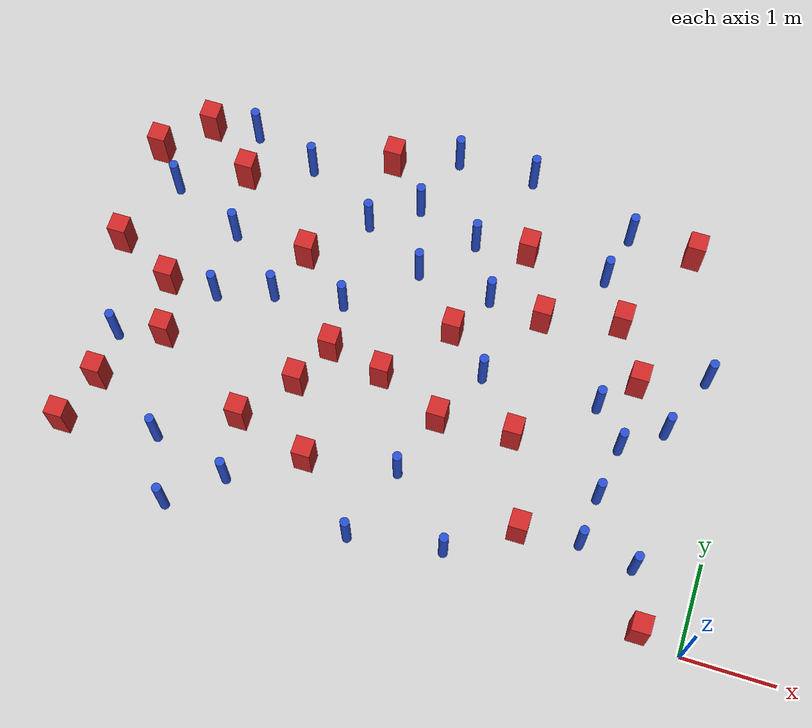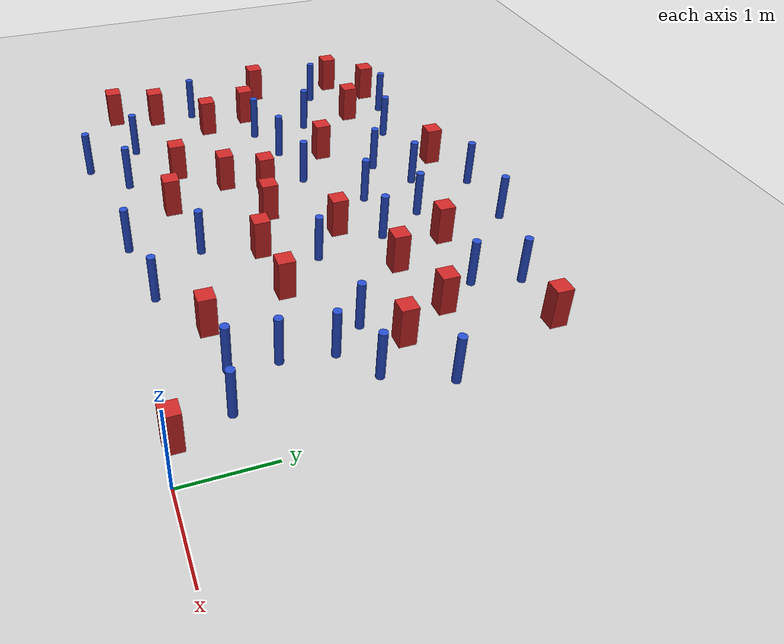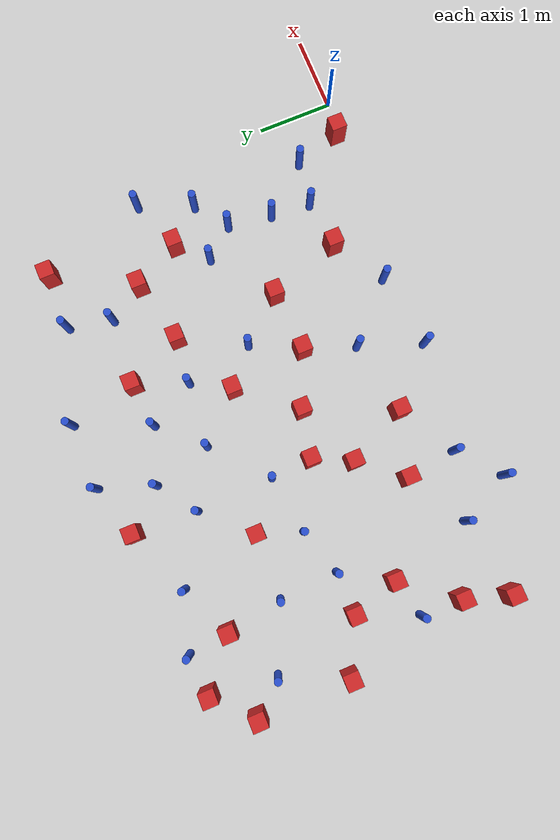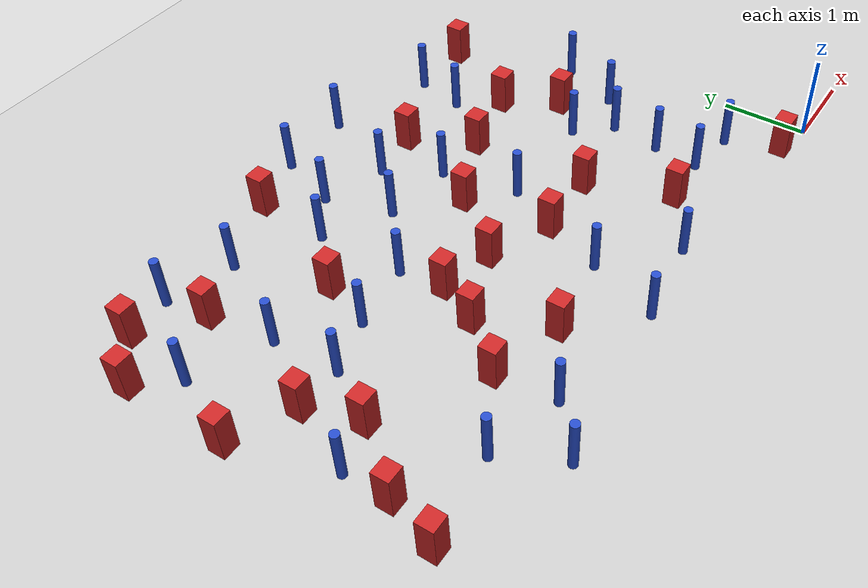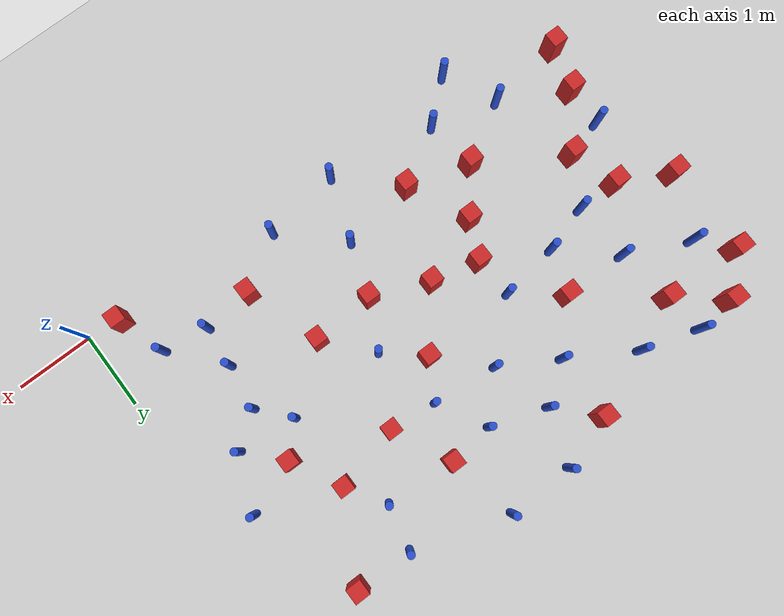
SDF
<sdf version="1.6">
 <world name="default">
  <model name="ground_plane">
   <static>1</static>
   <link name="link">
    <collision name="collision">
     <geometry><plane><normal>0 0 1</normal><size>100 100</size></plane></geometry>
     <surface><friction><ode><mu>100</mu><mu2>50</mu2></ode></friction></surface>
    </collision>
    <visual name="visual">
     <cast_shadows>0</cast_shadows>
     <geometry><plane><normal>0 0 1</normal><size>100 100</size></plane></geometry>
     <material>
      <ambient>1.0 1.0 1.0 1.0</ambient>
      <diffuse>0.8 0.8 0.8 1.0</diffuse>
      <specular>0.01 0.01 0.01 1.000000</specular>
     </material>
    </visual>
   </link>
  </model>
  <model name="square_post_obstacle16">
   <static>true</static>
   <pose>-6.51845038567 4.35904660605 8.22691968438e-08 7.2212513382e-06 -7.54495500217e-07 2.29674213826e-05</pose>
   <link name="link">
    <pose>0 0 0.25 0 -0 0</pose>
    <inertial>
     <mass>100</mass>
     <inertia>
      <ixx>0.166667</ixx>
      <ixy>0</ixy>
      <ixz>0</ixz>
      <iyy>0.166667</iyy>
      <iyz>0</iyz>
      <izz>0.166667</izz>
     </inertia>
    </inertial>
    <collision name="collision"><geometry><box><size>.2 .2 .5</size></box></geometry></collision>
    <visual name="visual">
     <geometry><box><size>.2 .2 .5</size></box></geometry>
     <material>
      <script><name>Gazebo/Red</name><uri>file://media/materials/scripts/gazebo.material</uri></script>
     </material>
    </visual>
   </link>
  </model>
  <model name="square_post_obstacle20">
   <static>true</static>
   <pose>-6.657368804 1.1010523176 8.22691968438e-08 7.2212513382e-06 -7.54495500217e-07 2.29674213826e-05</pose>
   <link name="link">
    <pose>0 0 0.25 0 -0 0</pose>
    <inertial>
     <mass>100</mass>
     <inertia>
      <ixx>0.166667</ixx>
      <ixy>0</ixy>
      <ixz>0</ixz>
      <iyy>0.166667</iyy>
      <iyz>0</iyz>
      <izz>0.166667</izz>
     </inertia>
    </inertial>
    <collision name="collision"><geometry><box><size>.2 .2 .5</size></box></geometry></collision>
    <visual name="visual">
     <geometry><box><size>.2 .2 .5</size></box></geometry>
     <material>
      <script><name>Gazebo/Red</name><uri>file://media/materials/scripts/gazebo.material</uri></script>
     </material>
    </visual>
   </link>
  </model>
  <model name="square_post_obstacle22">
   <static>true</static>
   <pose>-2.2351654924 1.73350953007 8.22691968438e-08 7.2212513382e-06 -7.54495500217e-07 2.29674213826e-05</pose>
   <link name="link">
    <pose>0 0 0.25 0 -0 0</pose>
    <inertial>
     <mass>100</mass>
     <inertia>
      <ixx>0.166667</ixx>
      <ixy>0</ixy>
      <ixz>0</ixz>
      <iyy>0.166667</iyy>
      <iyz>0</iyz>
      <izz>0.166667</izz>
     </inertia>
    </inertial>
    <collision name="collision"><geometry><box><size>.2 .2 .5</size></box></geometry></collision>
    <visual name="visual">
     <geometry><box><size>.2 .2 .5</size></box></geometry>
     <material>
      <script><name>Gazebo/Red</name><uri>file://media/materials/scripts/gazebo.material</uri></script>
     </material>
    </visual>
   </link>
  </model>
  <model name="pole_obstacle14">
   <static>true</static>
   <pose>-4.9809463206 0.424890662232 2.88873142074e-08 -9.90536689981e-09 4.60219948986e-07 -1.20965994962e-07</pose>
   <link name="link">
    <pose>0 0 0.3 0 -0 0</pose>
    <inertial>
     <mass>1</mass>
     <inertia><ixx>0.145833</ixx><ixy>0</ixy><ixz>0</ixz><iyy>0.145833</iyy><iyz>0</iyz><izz>0.125</izz></inertia>
    </inertial>
    <collision name="collision">
     <geometry><cylinder><radius>0.05</radius><length>.6</length></cylinder></geometry>
    </collision>
    <visual name="visual">
     <geometry><cylinder><radius>0.05</radius><length>.6</length></cylinder></geometry>
     <material>
      <script><name>Gazebo/Blue</name><uri>file://media/materials/scripts/gazebo.material</uri></script>
     </material>
    </visual>
   </link>
  </model>
  <model name="pole_obstacle16">
   <static>true</static>
   <pose>-3.73426114048 3.28254340727 2.88873142074e-08 -9.90536689597e-09 4.60219948995e-07 -1.20965994957e-07</pose>
   <link name="link">
    <pose>0 0 0.3 0 -0 0</pose>
    <inertial>
     <mass>1</mass>
     <inertia><ixx>0.145833</ixx><ixy>0</ixy><ixz>0</ixz><iyy>0.145833</iyy><iyz>0</iyz><izz>0.125</izz></inertia>
    </inertial>
    <collision name="collision">
     <geometry><cylinder><radius>0.05</radius><length>.6</length></cylinder></geometry>
    </collision>
    <visual name="visual">
     <geometry><cylinder><radius>0.05</radius><length>.6</length></cylinder></geometry>
     <material>
      <script><name>Gazebo/Blue</name><uri>file://media/materials/scripts/gazebo.material</uri></script>
     </material>
    </visual>
   </link>
  </model>
  <model name="square_post_obstacle28">
   <static>true</static>
   <pose>-1.11520462071 2.69341636059 8.22691968438e-08 7.2212513382e-06 -7.54495500217e-07 2.29674213826e-05</pose>
   <link name="link">
    <pose>0 0 0.25 0 -0 0</pose>
    <inertial>
     <mass>100</mass>
     <inertia>
      <ixx>0.166667</ixx>
      <ixy>0</ixy>
      <ixz>0</ixz>
      <iyy>0.166667</iyy>
      <iyz>0</iyz>
      <izz>0.166667</izz>
     </inertia>
    </inertial>
    <collision name="collision"><geometry><box><size>.2 .2 .5</size></box></geometry></collision>
    <visual name="visual">
     <geometry><box><size>.2 .2 .5</size></box></geometry>
     <material>
      <script><name>Gazebo/Red</name><uri>file://media/materials/scripts/gazebo.material</uri></script>
     </material>
    </visual>
   </link>
  </model>
  <model name="pole_obstacle25">
   <static>true</static>
   <pose>-5.17843306184 2.56643827365 2.88873142074e-08 -9.90536690245e-09 4.6021994898e-07 -1.20965994966e-07</pose>
   <link name="link">
    <pose>0 0 0.3 0 -0 0</pose>
    <inertial>
     <mass>1</mass>
     <inertia><ixx>0.145833</ixx><ixy>0</ixy><ixz>0</ixz><iyy>0.145833</iyy><iyz>0</iyz><izz>0.125</izz></inertia>
    </inertial>
    <collision name="collision">
     <geometry><cylinder><radius>0.05</radius><length>.6</length></cylinder></geometry>
    </collision>
    <visual name="visual">
     <geometry><cylinder><radius>0.05</radius><length>.6</length></cylinder></geometry>
     <material>
      <script><name>Gazebo/Blue</name><uri>file://media/materials/scripts/gazebo.material</uri></script>
     </material>
    </visual>
   </link>
  </model>
  <model name="square_post_obstacle32">
   <static>true</static>
   <pose>-3.04330899358 1.68615614559 8.22691968438e-08 7.2212513382e-06 -7.54495500217e-07 2.29674213826e-05</pose>
   <link name="link">
    <pose>0 0 0.25 0 -0 0</pose>
    <inertial>
     <mass>100</mass>
     <inertia>
      <ixx>0.166667</ixx>
      <ixy>0</ixy>
      <ixz>0</ixz>
      <iyy>0.166667</iyy>
      <iyz>0</iyz>
      <izz>0.166667</izz>
     </inertia>
    </inertial>
    <collision name="collision"><geometry><box><size>.2 .2 .5</size></box></geometry></collision>
    <visual name="visual">
     <geometry><box><size>.2 .2 .5</size></box></geometry>
     <material>
      <script><name>Gazebo/Red</name><uri>file://media/materials/scripts/gazebo.material</uri></script>
     </material>
    </visual>
   </link>
  </model>
  <model name="pole_obstacle33">
   <static>true</static>
   <pose>-6.63795299948 3.52090279439 2.88873142074e-08 -9.90536690245e-09 4.6021994898e-07 -1.20965994966e-07</pose>
   <link name="link">
    <pose>0 0 0.3 0 -0 0</pose>
    <inertial>
     <mass>1</mass>
     <inertia><ixx>0.145833</ixx><ixy>0</ixy><ixz>0</ixz><iyy>0.145833</iyy><iyz>0</iyz><izz>0.125</izz></inertia>
    </inertial>
    <collision name="collision">
     <geometry><cylinder><radius>0.05</radius><length>.6</length></cylinder></geometry>
    </collision>
    <visual name="visual">
     <geometry><cylinder><radius>0.05</radius><length>.6</length></cylinder></geometry>
     <material>
      <script><name>Gazebo/Blue</name><uri>file://media/materials/scripts/gazebo.material</uri></script>
     </material>
    </visual>
   </link>
  </model>
  <model name="pole_obstacle43">
   <static>true</static>
   <pose>-3.57193464272 0.193258581739 2.88873142074e-08 -9.90536691049e-09 4.6021994896e-07 -1.20965994981e-07</pose>
   <link name="link">
    <pose>0 0 0.3 0 -0 0</pose>
    <inertial>
     <mass>1</mass>
     <inertia><ixx>0.145833</ixx><ixy>0</ixy><ixz>0</ixz><iyy>0.145833</iyy><iyz>0</iyz><izz>0.125</izz></inertia>
    </inertial>
    <collision name="collision">
     <geometry><cylinder><radius>0.05</radius><length>.6</length></cylinder></geometry>
    </collision>
    <visual name="visual">
     <geometry><cylinder><radius>0.05</radius><length>.6</length></cylinder></geometry>
     <material>
      <script><name>Gazebo/Blue</name><uri>file://media/materials/scripts/gazebo.material</uri></script>
     </material>
    </visual>
   </link>
  </model>
  <model name="pole_obstacle46">
   <static>true</static>
   <pose>-2.72502126284 2.30373157046 2.88873142074e-08 -9.90536690232e-09 4.6021994898e-07 -1.20965994968e-07</pose>
   <link name="link">
    <pose>0 0 0.3 0 -0 0</pose>
    <inertial>
     <mass>1</mass>
     <inertia><ixx>0.145833</ixx><ixy>0</ixy><ixz>0</ixz><iyy>0.145833</iyy><iyz>0</iyz><izz>0.125</izz></inertia>
    </inertial>
    <collision name="collision">
     <geometry><cylinder><radius>0.05</radius><length>.6</length></cylinder></geometry>
    </collision>
    <visual name="visual">
     <geometry><cylinder><radius>0.05</radius><length>.6</length></cylinder></geometry>
     <material>
      <script><name>Gazebo/Blue</name><uri>file://media/materials/scripts/gazebo.material</uri></script>
     </material>
    </visual>
   </link>
  </model>
  <model name="square_post_obstacle49">
   <static>true</static>
   <pose>-4.3804105331 2.13415038699 8.22691968438e-08 7.2212513382e-06 -7.54495500217e-07 2.29674213826e-05</pose>
   <link name="link">
    <pose>0 0 0.25 0 -0 0</pose>
    <inertial>
     <mass>100</mass>
     <inertia>
      <ixx>0.166667</ixx>
      <ixy>0</ixy>
      <ixz>0</ixz>
      <iyy>0.166667</iyy>
      <iyz>0</iyz>
      <izz>0.166667</izz>
     </inertia>
    </inertial>
    <collision name="collision"><geometry><box><size>.2 .2 .5</size></box></geometry></collision>
    <visual name="visual">
     <geometry><box><size>.2 .2 .5</size></box></geometry>
     <material>
      <script><name>Gazebo/Red</name><uri>file://media/materials/scripts/gazebo.material</uri></script>
     </material>
    </visual>
   </link>
  </model>
  <model name="pole_obstacle51">
   <static>true</static>
   <pose>-3.69970686988 4.75485881099 2.88873142074e-08 -9.90536689859e-09 4.60219948989e-07 -1.20965994961e-07</pose>
   <link name="link">
    <pose>0 0 0.3 0 -0 0</pose>
    <inertial>
     <mass>1</mass>
     <inertia><ixx>0.145833</ixx><ixy>0</ixy><ixz>0</ixz><iyy>0.145833</iyy><iyz>0</iyz><izz>0.125</izz></inertia>
    </inertial>
    <collision name="collision">
     <geometry><cylinder><radius>0.05</radius><length>.6</length></cylinder></geometry>
    </collision>
    <visual name="visual">
     <geometry><cylinder><radius>0.05</radius><length>.6</length></cylinder></geometry>
     <material>
      <script><name>Gazebo/Blue</name><uri>file://media/materials/scripts/gazebo.material</uri></script>
     </material>
    </visual>
   </link>
  </model>
  <model name="pole_obstacle60">
   <static>true</static>
   <pose>-1.45948659381 2.32723784329 2.88873142074e-08 -9.90536689791e-09 4.6021994899e-07 -1.20965994959e-07</pose>
   <link name="link">
    <pose>0 0 0.3 0 -0 0</pose>
    <inertial>
     <mass>1</mass>
     <inertia><ixx>0.145833</ixx><ixy>0</ixy><ixz>0</ixz><iyy>0.145833</iyy><iyz>0</iyz><izz>0.125</izz></inertia>
    </inertial>
    <collision name="collision">
     <geometry><cylinder><radius>0.05</radius><length>.6</length></cylinder></geometry>
    </collision>
    <visual name="visual">
     <geometry><cylinder><radius>0.05</radius><length>.6</length></cylinder></geometry>
     <material>
      <script><name>Gazebo/Blue</name><uri>file://media/materials/scripts/gazebo.material</uri></script>
     </material>
    </visual>
   </link>
  </model>
  <model name="square_post_obstacle75">
   <static>true</static>
   <pose>-2.64704335204 3.85869152748 8.22691968438e-08 7.2212513382e-06 -7.54495500217e-07 2.29674213826e-05</pose>
   <link name="link">
    <pose>0 0 0.25 0 -0 0</pose>
    <inertial>
     <mass>100</mass>
     <inertia>
      <ixx>0.166667</ixx>
      <ixy>0</ixy>
      <ixz>0</ixz>
      <iyy>0.166667</iyy>
      <iyz>0</iyz>
      <izz>0.166667</izz>
     </inertia>
    </inertial>
    <collision name="collision"><geometry><box><size>.2 .2 .5</size></box></geometry></collision>
    <visual name="visual">
     <geometry><box><size>.2 .2 .5</size></box></geometry>
     <material>
      <script><name>Gazebo/Red</name><uri>file://media/materials/scripts/gazebo.material</uri></script>
     </material>
    </visual>
   </link>
  </model>
  <model name="pole_obstacle83">
   <static>true</static>
   <pose>-0.668811222957 0.72222553618 2.88873142074e-08 -9.90536689967e-09 4.60219948986e-07 -1.20965994963e-07</pose>
   <link name="link">
    <pose>0 0 0.3 0 -0 0</pose>
    <inertial>
     <mass>1</mass>
     <inertia><ixx>0.145833</ixx><ixy>0</ixy><ixz>0</ixz><iyy>0.145833</iyy><iyz>0</iyz><izz>0.125</izz></inertia>
    </inertial>
    <collision name="collision">
     <geometry><cylinder><radius>0.05</radius><length>.6</length></cylinder></geometry>
    </collision>
    <visual name="visual">
     <geometry><cylinder><radius>0.05</radius><length>.6</length></cylinder></geometry>
     <material>
      <script><name>Gazebo/Blue</name><uri>file://media/materials/scripts/gazebo.material</uri></script>
     </material>
    </visual>
   </link>
  </model>
  <model name="pole_obstacle88">
   <static>true</static>
   <pose>-5.82400107984 3.14720429837 2.88873142074e-08 -9.90536690245e-09 4.6021994898e-07 -1.20965994966e-07</pose>
   <link name="link">
    <pose>0 0 0.3 0 -0 0</pose>
    <inertial>
     <mass>1</mass>
     <inertia><ixx>0.145833</ixx><ixy>0</ixy><ixz>0</ixz><iyy>0.145833</iyy><iyz>0</iyz><izz>0.125</izz></inertia>
    </inertial>
    <collision name="collision">
     <geometry><cylinder><radius>0.05</radius><length>.6</length></cylinder></geometry>
    </collision>
    <visual name="visual">
     <geometry><cylinder><radius>0.05</radius><length>.6</length></cylinder></geometry>
     <material>
      <script><name>Gazebo/Blue</name><uri>file://media/materials/scripts/gazebo.material</uri></script>
     </material>
    </visual>
   </link>
  </model>
  <model name="square_post_obstacle82">
   <static>true</static>
   <pose>-3.76192821266 1.9963932347 8.22691968438e-08 7.2212513382e-06 -7.54495500217e-07 2.29674213826e-05</pose>
   <link name="link">
    <pose>0 0 0.25 0 -0 0</pose>
    <inertial>
     <mass>100</mass>
     <inertia>
      <ixx>0.166667</ixx>
      <ixy>0</ixy>
      <ixz>0</ixz>
      <iyy>0.166667</iyy>
      <iyz>0</iyz>
      <izz>0.166667</izz>
     </inertia>
    </inertial>
    <collision name="collision"><geometry><box><size>.2 .2 .5</size></box></geometry></collision>
    <visual name="visual">
     <geometry><box><size>.2 .2 .5</size></box></geometry>
     <material>
      <script><name>Gazebo/Red</name><uri>file://media/materials/scripts/gazebo.material</uri></script>
     </material>
    </visual>
   </link>
  </model>
  <model name="pole_obstacle100">
   <static>true</static>
   <pose>-2.83205600875 4.7627982181 2.88873142074e-08 -9.90536689859e-09 4.60219948989e-07 -1.20965994961e-07</pose>
   <link name="link">
    <pose>0 0 0.3 0 -0 0</pose>
    <inertial>
     <mass>1</mass>
     <inertia><ixx>0.145833</ixx><ixy>0</ixy><ixz>0</ixz><iyy>0.145833</iyy><iyz>0</iyz><izz>0.125</izz></inertia>
    </inertial>
    <collision name="collision">
     <geometry><cylinder><radius>0.05</radius><length>.6</length></cylinder></geometry>
    </collision>
    <visual name="visual">
     <geometry><cylinder><radius>0.05</radius><length>.6</length></cylinder></geometry>
     <material>
      <script><name>Gazebo/Blue</name><uri>file://media/materials/scripts/gazebo.material</uri></script>
     </material>
    </visual>
   </link>
  </model>
  <model name="square_post_obstacle90">
   <static>true</static>
   <pose>-5.06038555081 1.10114767055 8.22691968438e-08 7.2212513382e-06 -7.54495500217e-07 2.29674213826e-05</pose>
   <link name="link">
    <pose>0 0 0.25 0 -0 0</pose>
    <inertial>
     <mass>100</mass>
     <inertia>
      <ixx>0.166667</ixx>
      <ixy>0</ixy>
      <ixz>0</ixz>
      <iyy>0.166667</iyy>
      <iyz>0</iyz>
      <izz>0.166667</izz>
     </inertia>
    </inertial>
    <collision name="collision"><geometry><box><size>.2 .2 .5</size></box></geometry></collision>
    <visual name="visual">
     <geometry><box><size>.2 .2 .5</size></box></geometry>
     <material>
      <script><name>Gazebo/Red</name><uri>file://media/materials/scripts/gazebo.material</uri></script>
     </material>
    </visual>
   </link>
  </model>
  <model name="square_post_obstacle92">
   <static>true</static>
   <pose>-6.1452950859 1.76840666454 8.22691968438e-08 7.2212513382e-06 -7.54495500217e-07 2.29674213826e-05</pose>
   <link name="link">
    <pose>0 0 0.25 0 -0 0</pose>
    <inertial>
     <mass>100</mass>
     <inertia>
      <ixx>0.166667</ixx>
      <ixy>0</ixy>
      <ixz>0</ixz>
      <iyy>0.166667</iyy>
      <iyz>0</iyz>
      <izz>0.166667</izz>
     </inertia>
    </inertial>
    <collision name="collision"><geometry><box><size>.2 .2 .5</size></box></geometry></collision>
    <visual name="visual">
     <geometry><box><size>.2 .2 .5</size></box></geometry>
     <material>
      <script><name>Gazebo/Red</name><uri>file://media/materials/scripts/gazebo.material</uri></script>
     </material>
    </visual>
   </link>
  </model>
  <model name="pole_obstacle107">
   <static>true</static>
   <pose>-3.23483120626 3.80420183596 2.88873142074e-08 -9.90536689597e-09 4.60219948995e-07 -1.20965994957e-07</pose>
   <link name="link">
    <pose>0 0 0.3 0 -0 0</pose>
    <inertial>
     <mass>1</mass>
     <inertia><ixx>0.145833</ixx><ixy>0</ixy><ixz>0</ixz><iyy>0.145833</iyy><iyz>0</iyz><izz>0.125</izz></inertia>
    </inertial>
    <collision name="collision">
     <geometry><cylinder><radius>0.05</radius><length>.6</length></cylinder></geometry>
    </collision>
    <visual name="visual">
     <geometry><cylinder><radius>0.05</radius><length>.6</length></cylinder></geometry>
     <material>
      <script><name>Gazebo/Blue</name><uri>file://media/materials/scripts/gazebo.material</uri></script>
     </material>
    </visual>
   </link>
  </model>
  <model name="pole_obstacle108">
   <static>true</static>
   <pose>-1.20782186908 1.34954257813 2.88873142074e-08 -9.90536689672e-09 4.60219948993e-07 -1.20965994959e-07</pose>
   <link name="link">
    <pose>0 0 0.3 0 -0 0</pose>
    <inertial>
     <mass>1</mass>
     <inertia><ixx>0.145833</ixx><ixy>0</ixy><ixz>0</ixz><iyy>0.145833</iyy><iyz>0</iyz><izz>0.125</izz></inertia>
    </inertial>
    <collision name="collision">
     <geometry><cylinder><radius>0.05</radius><length>.6</length></cylinder></geometry>
    </collision>
    <visual name="visual">
     <geometry><cylinder><radius>0.05</radius><length>.6</length></cylinder></geometry>
     <material>
      <script><name>Gazebo/Blue</name><uri>file://media/materials/scripts/gazebo.material</uri></script>
     </material>
    </visual>
   </link>
  </model>
  <model name="pole_obstacle111">
   <static>true</static>
   <pose>-3.27593563407 1.00960547625 2.88873142074e-08 -9.90536691025e-09 4.60219948961e-07 -1.2096599498e-07</pose>
   <link name="link">
    <pose>0 0 0.3 0 -0 0</pose>
    <inertial>
     <mass>1</mass>
     <inertia><ixx>0.145833</ixx><ixy>0</ixy><ixz>0</ixz><iyy>0.145833</iyy><iyz>0</iyz><izz>0.125</izz></inertia>
    </inertial>
    <collision name="collision">
     <geometry><cylinder><radius>0.05</radius><length>.6</length></cylinder></geometry>
    </collision>
    <visual name="visual">
     <geometry><cylinder><radius>0.05</radius><length>.6</length></cylinder></geometry>
     <material>
      <script><name>Gazebo/Blue</name><uri>file://media/materials/scripts/gazebo.material</uri></script>
     </material>
    </visual>
   </link>
  </model>
  <model name="pole_obstacle112">
   <static>true</static>
   <pose>-5.78964398693 2.38194106221 2.88873142074e-08 -9.90536690245e-09 4.6021994898e-07 -1.20965994966e-07</pose>
   <link name="link">
    <pose>0 0 0.3 0 -0 0</pose>
    <inertial>
     <mass>1</mass>
     <inertia><ixx>0.145833</ixx><ixy>0</ixy><ixz>0</ixz><iyy>0.145833</iyy><iyz>0</iyz><izz>0.125</izz></inertia>
    </inertial>
    <collision name="collision">
     <geometry><cylinder><radius>0.05</radius><length>.6</length></cylinder></geometry>
    </collision>
    <visual name="visual">
     <geometry><cylinder><radius>0.05</radius><length>.6</length></cylinder></geometry>
     <material>
      <script><name>Gazebo/Blue</name><uri>file://media/materials/scripts/gazebo.material</uri></script>
     </material>
    </visual>
   </link>
  </model>
  <model name="pole_obstacle117">
   <static>true</static>
   <pose>-2.57649395197 0.331814115685 2.88873142074e-08 -9.90536689307e-09 4.60219949002e-07 -1.20965994954e-07</pose>
   <link name="link">
    <pose>0 0 0.3 0 -0 0</pose>
    <inertial>
     <mass>1</mass>
     <inertia><ixx>0.145833</ixx><ixy>0</ixy><ixz>0</ixz><iyy>0.145833</iyy><iyz>0</iyz><izz>0.125</izz></inertia>
    </inertial>
    <collision name="collision">
     <geometry><cylinder><radius>0.05</radius><length>.6</length></cylinder></geometry>
    </collision>
    <visual name="visual">
     <geometry><cylinder><radius>0.05</radius><length>.6</length></cylinder></geometry>
     <material>
      <script><name>Gazebo/Blue</name><uri>file://media/materials/scripts/gazebo.material</uri></script>
     </material>
    </visual>
   </link>
  </model>
  <model name="square_post_obstacle104">
   <static>true</static>
   <pose>-4.61251425804 1.6501810559 8.22691968438e-08 7.2212513382e-06 -7.54495500217e-07 2.29674213826e-05</pose>
   <link name="link">
    <pose>0 0 0.25 0 -0 0</pose>
    <inertial>
     <mass>100</mass>
     <inertia>
      <ixx>0.166667</ixx>
      <ixy>0</ixy>
      <ixz>0</ixz>
      <iyy>0.166667</iyy>
      <iyz>0</iyz>
      <izz>0.166667</izz>
     </inertia>
    </inertial>
    <collision name="collision"><geometry><box><size>.2 .2 .5</size></box></geometry></collision>
    <visual name="visual">
     <geometry><box><size>.2 .2 .5</size></box></geometry>
     <material>
      <script><name>Gazebo/Red</name><uri>file://media/materials/scripts/gazebo.material</uri></script>
     </material>
    </visual>
   </link>
  </model>
  <model name="square_post_obstacle108">
   <static>true</static>
   <pose>-4.39906304446 4.52175906024 8.22691968438e-08 7.22125133819e-06 -7.54495500217e-07 2.29674213826e-05</pose>
   <link name="link">
    <pose>0 0 0.25 0 -0 0</pose>
    <inertial>
     <mass>100</mass>
     <inertia>
      <ixx>0.166667</ixx>
      <ixy>0</ixy>
      <ixz>0</ixz>
      <iyy>0.166667</iyy>
      <iyz>0</iyz>
      <izz>0.166667</izz>
     </inertia>
    </inertial>
    <collision name="collision"><geometry><box><size>.2 .2 .5</size></box></geometry></collision>
    <visual name="visual">
     <geometry><box><size>.2 .2 .5</size></box></geometry>
     <material>
      <script><name>Gazebo/Red</name><uri>file://media/materials/scripts/gazebo.material</uri></script>
     </material>
    </visual>
   </link>
  </model>
  <model name="square_post_obstacle110">
   <static>true</static>
   <pose>-1.90219730831 0.765238088213 8.22691968438e-08 7.2212513382e-06 -7.54495500217e-07 2.29674213826e-05</pose>
   <link name="link">
    <pose>0 0 0.25 0 -0 0</pose>
    <inertial>
     <mass>100</mass>
     <inertia>
      <ixx>0.166667</ixx>
      <ixy>0</ixy>
      <ixz>0</ixz>
      <iyy>0.166667</iyy>
      <iyz>0</iyz>
      <izz>0.166667</izz>
     </inertia>
    </inertial>
    <collision name="collision"><geometry><box><size>.2 .2 .5</size></box></geometry></collision>
    <visual name="visual">
     <geometry><box><size>.2 .2 .5</size></box></geometry>
     <material>
      <script><name>Gazebo/Red</name><uri>file://media/materials/scripts/gazebo.material</uri></script>
     </material>
    </visual>
   </link>
  </model>
  <model name="pole_obstacle120">
   <static>true</static>
   <pose>-4.44121818063 3.69257280778 2.88873142074e-08 -9.90536690245e-09 4.6021994898e-07 -1.20965994966e-07</pose>
   <link name="link">
    <pose>0 0 0.3 0 -0 0</pose>
    <inertial>
     <mass>1</mass>
     <inertia><ixx>0.145833</ixx><ixy>0</ixy><ixz>0</ixz><iyy>0.145833</iyy><iyz>0</iyz><izz>0.125</izz></inertia>
    </inertial>
    <collision name="collision">
     <geometry><cylinder><radius>0.05</radius><length>.6</length></cylinder></geometry>
    </collision>
    <visual name="visual">
     <geometry><cylinder><radius>0.05</radius><length>.6</length></cylinder></geometry>
     <material>
      <script><name>Gazebo/Blue</name><uri>file://media/materials/scripts/gazebo.material</uri></script>
     </material>
    </visual>
   </link>
  </model>
  <model name="pole_obstacle121">
   <static>true</static>
   <pose>-6.65618269557 1.63387012568 2.88873142074e-08 -9.90536689445e-09 4.60219948999e-07 -1.20965994956e-07</pose>
   <link name="link">
    <pose>0 0 0.3 0 -0 0</pose>
    <inertial>
     <mass>1</mass>
     <inertia><ixx>0.145833</ixx><ixy>0</ixy><ixz>0</ixz><iyy>0.145833</iyy><iyz>0</iyz><izz>0.125</izz></inertia>
    </inertial>
    <collision name="collision">
     <geometry><cylinder><radius>0.05</radius><length>.6</length></cylinder></geometry>
    </collision>
    <visual name="visual">
     <geometry><cylinder><radius>0.05</radius><length>.6</length></cylinder></geometry>
     <material>
      <script><name>Gazebo/Blue</name><uri>file://media/materials/scripts/gazebo.material</uri></script>
     </material>
    </visual>
   </link>
  </model>
  <model name="pole_obstacle122">
   <static>true</static>
   <pose>-2.89557182949 3.1927379685 2.88873142074e-08 -9.90536690232e-09 4.6021994898e-07 -1.20965994968e-07</pose>
   <link name="link">
    <pose>0 0 0.3 0 -0 0</pose>
    <inertial>
     <mass>1</mass>
     <inertia><ixx>0.145833</ixx><ixy>0</ixy><ixz>0</ixz><iyy>0.145833</iyy><iyz>0</iyz><izz>0.125</izz></inertia>
    </inertial>
    <collision name="collision">
     <geometry><cylinder><radius>0.05</radius><length>.6</length></cylinder></geometry>
    </collision>
    <visual name="visual">
     <geometry><cylinder><radius>0.05</radius><length>.6</length></cylinder></geometry>
     <material>
      <script><name>Gazebo/Blue</name><uri>file://media/materials/scripts/gazebo.material</uri></script>
     </material>
    </visual>
   </link>
  </model>
  <model name="pole_obstacle130">
   <static>true</static>
   <pose>-1.7468610078 3.80078505107 2.88873142074e-08 -9.90536689791e-09 4.6021994899e-07 -1.20965994959e-07</pose>
   <link name="link">
    <pose>0 0 0.3 0 -0 0</pose>
    <inertial>
     <mass>1</mass>
     <inertia><ixx>0.145833</ixx><ixy>0</ixy><ixz>0</ixz><iyy>0.145833</iyy><iyz>0</iyz><izz>0.125</izz></inertia>
    </inertial>
    <collision name="collision">
     <geometry><cylinder><radius>0.05</radius><length>.6</length></cylinder></geometry>
    </collision>
    <visual name="visual">
     <geometry><cylinder><radius>0.05</radius><length>.6</length></cylinder></geometry>
     <material>
      <script><name>Gazebo/Blue</name><uri>file://media/materials/scripts/gazebo.material</uri></script>
     </material>
    </visual>
   </link>
  </model>
  <model name="pole_obstacle131">
   <static>true</static>
   <pose>-4.41590547078 2.6752767382 2.88873142074e-08 -9.90536690245e-09 4.6021994898e-07 -1.20965994966e-07</pose>
   <link name="link">
    <pose>0 0 0.3 0 -0 0</pose>
    <inertial>
     <mass>1</mass>
     <inertia><ixx>0.145833</ixx><ixy>0</ixy><ixz>0</ixz><iyy>0.145833</iyy><iyz>0</iyz><izz>0.125</izz></inertia>
    </inertial>
    <collision name="collision">
     <geometry><cylinder><radius>0.05</radius><length>.6</length></cylinder></geometry>
    </collision>
    <visual name="visual">
     <geometry><cylinder><radius>0.05</radius><length>.6</length></cylinder></geometry>
     <material>
      <script><name>Gazebo/Blue</name><uri>file://media/materials/scripts/gazebo.material</uri></script>
     </material>
    </visual>
   </link>
  </model>
  <model name="square_post_obstacle118">
   <static>true</static>
   <pose>-4.97992257973 3.11904558111 8.22691968438e-08 7.2212513382e-06 -7.54495500217e-07 2.29674213826e-05</pose>
   <link name="link">
    <pose>0 0 0.25 0 -0 0</pose>
    <inertial>
     <mass>100</mass>
     <inertia>
      <ixx>0.166667</ixx>
      <ixy>0</ixy>
      <ixz>0</ixz>
      <iyy>0.166667</iyy>
      <iyz>0</iyz>
      <izz>0.166667</izz>
     </inertia>
    </inertial>
    <collision name="collision"><geometry><box><size>.2 .2 .5</size></box></geometry></collision>
    <visual name="visual">
     <geometry><box><size>.2 .2 .5</size></box></geometry>
     <material>
      <script><name>Gazebo/Red</name><uri>file://media/materials/scripts/gazebo.material</uri></script>
     </material>
    </visual>
   </link>
  </model>
  <model name="square_post_obstacle132">
   <static>true</static>
   <pose>-4.24384551502 0.860972012849 8.22691968438e-08 7.2212513382e-06 -7.54495500217e-07 2.29674213826e-05</pose>
   <link name="link">
    <pose>0 0 0.25 0 -0 0</pose>
    <inertial>
     <mass>100</mass>
     <inertia>
      <ixx>0.166667</ixx>
      <ixy>0</ixy>
      <ixz>0</ixz>
      <iyy>0.166667</iyy>
      <iyz>0</iyz>
      <izz>0.166667</izz>
     </inertia>
    </inertial>
    <collision name="collision"><geometry><box><size>.2 .2 .5</size></box></geometry></collision>
    <visual name="visual">
     <geometry><box><size>.2 .2 .5</size></box></geometry>
     <material>
      <script><name>Gazebo/Red</name><uri>file://media/materials/scripts/gazebo.material</uri></script>
     </material>
    </visual>
   </link>
  </model>
  <model name="pole_obstacle148">
   <static>true</static>
   <pose>-1.12684208717 1.93792849258 2.88873142074e-08 -9.90536689672e-09 4.60219948993e-07 -1.20965994959e-07</pose>
   <link name="link">
    <pose>0 0 0.3 0 -0 0</pose>
    <inertial>
     <mass>1</mass>
     <inertia><ixx>0.145833</ixx><ixy>0</ixy><ixz>0</ixz><iyy>0.145833</iyy><iyz>0</iyz><izz>0.125</izz></inertia>
    </inertial>
    <collision name="collision">
     <geometry><cylinder><radius>0.05</radius><length>.6</length></cylinder></geometry>
    </collision>
    <visual name="visual">
     <geometry><cylinder><radius>0.05</radius><length>.6</length></cylinder></geometry>
     <material>
      <script><name>Gazebo/Blue</name><uri>file://media/materials/scripts/gazebo.material</uri></script>
     </material>
    </visual>
   </link>
  </model>
  <model name="square_post_obstacle138">
   <static>true</static>
   <pose>-2.29181683768 3.12623313399 8.22691968438e-08 7.2212513382e-06 -7.54495500217e-07 2.29674213826e-05</pose>
   <link name="link">
    <pose>0 0 0.25 0 -0 0</pose>
    <inertial>
     <mass>100</mass>
     <inertia>
      <ixx>0.166667</ixx>
      <ixy>0</ixy>
      <ixz>0</ixz>
      <iyy>0.166667</iyy>
      <iyz>0</iyz>
      <izz>0.166667</izz>
     </inertia>
    </inertial>
    <collision name="collision"><geometry><box><size>.2 .2 .5</size></box></geometry></collision>
    <visual name="visual">
     <geometry><box><size>.2 .2 .5</size></box></geometry>
     <material>
      <script><name>Gazebo/Red</name><uri>file://media/materials/scripts/gazebo.material</uri></script>
     </material>
    </visual>
   </link>
  </model>
  <model name="pole_obstacle158">
   <static>true</static>
   <pose>-0.412152478251 2.95071228513 2.88873142074e-08 -9.90536689663e-09 4.60219948993e-07 -1.20965994959e-07</pose>
   <link name="link">
    <pose>0 0 0.3 0 -0 0</pose>
    <inertial>
     <mass>1</mass>
     <inertia><ixx>0.145833</ixx><ixy>0</ixy><ixz>0</ixz><iyy>0.145833</iyy><iyz>0</iyz><izz>0.125</izz></inertia>
    </inertial>
    <collision name="collision">
     <geometry><cylinder><radius>0.05</radius><length>.6</length></cylinder></geometry>
    </collision>
    <visual name="visual">
     <geometry><cylinder><radius>0.05</radius><length>.6</length></cylinder></geometry>
     <material>
      <script><name>Gazebo/Blue</name><uri>file://media/materials/scripts/gazebo.material</uri></script>
     </material>
    </visual>
   </link>
  </model>
  <model name="square_post_obstacle156">
   <static>true</static>
   <pose>-6.83832671456 0.523014270752 8.22691968438e-08 7.2212513382e-06 -7.54495500217e-07 2.29674213826e-05</pose>
   <link name="link">
    <pose>0 0 0.25 0 -0 0</pose>
    <inertial>
     <mass>100</mass>
     <inertia>
      <ixx>0.166667</ixx>
      <ixy>0</ixy>
      <ixz>0</ixz>
      <iyy>0.166667</iyy>
      <iyz>0</iyz>
      <izz>0.166667</izz>
     </inertia>
    </inertial>
    <collision name="collision"><geometry><box><size>.2 .2 .5</size></box></geometry></collision>
    <visual name="visual">
     <geometry><box><size>.2 .2 .5</size></box></geometry>
     <material>
      <script><name>Gazebo/Red</name><uri>file://media/materials/scripts/gazebo.material</uri></script>
     </material>
    </visual>
   </link>
  </model>
  <model name="square_post_obstacle163">
   <static>true</static>
   <pose>-6.32541976554 2.37754735554 8.22691968438e-08 7.2212513382e-06 -7.54495500217e-07 2.29674213826e-05</pose>
   <link name="link">
    <pose>0 0 0.25 0 -0 0</pose>
    <inertial>
     <mass>100</mass>
     <inertia>
      <ixx>0.166667</ixx>
      <ixy>0</ixy>
      <ixz>0</ixz>
      <iyy>0.166667</iyy>
      <iyz>0</iyz>
      <izz>0.166667</izz>
     </inertia>
    </inertial>
    <collision name="collision"><geometry><box><size>.2 .2 .5</size></box></geometry></collision>
    <visual name="visual">
     <geometry><box><size>.2 .2 .5</size></box></geometry>
     <material>
      <script><name>Gazebo/Red</name><uri>file://media/materials/scripts/gazebo.material</uri></script>
     </material>
    </visual>
   </link>
  </model>
  <model name="square_post_obstacle164">
   <static>true</static>
   <pose>-5.93417490693 3.87698237487 8.22691968438e-08 7.2212513382e-06 -7.54495500217e-07 2.29674213826e-05</pose>
   <link name="link">
    <pose>0 0 0.25 0 -0 0</pose>
    <inertial>
     <mass>100</mass>
     <inertia>
      <ixx>0.166667</ixx>
      <ixy>0</ixy>
      <ixz>0</ixz>
      <iyy>0.166667</iyy>
      <iyz>0</iyz>
      <izz>0.166667</izz>
     </inertia>
    </inertial>
    <collision name="collision"><geometry><box><size>.2 .2 .5</size></box></geometry></collision>
    <visual name="visual">
     <geometry><box><size>.2 .2 .5</size></box></geometry>
     <material>
      <script><name>Gazebo/Red</name><uri>file://media/materials/scripts/gazebo.material</uri></script>
     </material>
    </visual>
   </link>
  </model>
  <model name="pole_obstacle179">
   <static>true</static>
   <pose>-1.25764149293 0.818094207055 2.88873142074e-08 -9.90536689692e-09 4.60219948993e-07 -1.20965994958e-07</pose>
   <link name="link">
    <pose>0 0 0.3 0 -0 0</pose>
    <inertial>
     <mass>1</mass>
     <inertia><ixx>0.145833</ixx><ixy>0</ixy><ixz>0</ixz><iyy>0.145833</iyy><iyz>0</iyz><izz>0.125</izz></inertia>
    </inertial>
    <collision name="collision">
     <geometry><cylinder><radius>0.05</radius><length>.6</length></cylinder></geometry>
    </collision>
    <visual name="visual">
     <geometry><cylinder><radius>0.05</radius><length>.6</length></cylinder></geometry>
     <material>
      <script><name>Gazebo/Blue</name><uri>file://media/materials/scripts/gazebo.material</uri></script>
     </material>
    </visual>
   </link>
  </model>
  <model name="pole_obstacle180">
   <static>true</static>
   <pose>-5.99952983451 4.41707145401 2.88873142074e-08 -9.90536690842e-09 4.60219948965e-07 -1.20965994976e-07</pose>
   <link name="link">
    <pose>0 0 0.3 0 -0 0</pose>
    <inertial>
     <mass>1</mass>
     <inertia><ixx>0.145833</ixx><ixy>0</ixy><ixz>0</ixz><iyy>0.145833</iyy><iyz>0</iyz><izz>0.125</izz></inertia>
    </inertial>
    <collision name="collision">
     <geometry><cylinder><radius>0.05</radius><length>.6</length></cylinder></geometry>
    </collision>
    <visual name="visual">
     <geometry><cylinder><radius>0.05</radius><length>.6</length></cylinder></geometry>
     <material>
      <script><name>Gazebo/Blue</name><uri>file://media/materials/scripts/gazebo.material</uri></script>
     </material>
    </visual>
   </link>
  </model>
  <model name="pole_obstacle182">
   <static>true</static>
   <pose>-3.94818732469 4.04851644836 2.88873142074e-08 -9.90536689848e-09 4.60219948989e-07 -1.20965994961e-07</pose>
   <link name="link">
    <pose>0 0 0.3 0 -0 0</pose>
    <inertial>
     <mass>1</mass>
     <inertia><ixx>0.145833</ixx><ixy>0</ixy><ixz>0</ixz><iyy>0.145833</iyy><iyz>0</iyz><izz>0.125</izz></inertia>
    </inertial>
    <collision name="collision">
     <geometry><cylinder><radius>0.05</radius><length>.6</length></cylinder></geometry>
    </collision>
    <visual name="visual">
     <geometry><cylinder><radius>0.05</radius><length>.6</length></cylinder></geometry>
     <material>
      <script><name>Gazebo/Blue</name><uri>file://media/materials/scripts/gazebo.material</uri></script>
     </material>
    </visual>
   </link>
  </model>
  <model name="square_post_obstacle175">
   <static>true</static>
   <pose>-6.98898704398 2.71119474068 8.22691968438e-08 7.2212513382e-06 -7.54495500217e-07 2.29674213826e-05</pose>
   <link name="link">
    <pose>0 0 0.25 0 -0 0</pose>
    <inertial>
     <mass>100</mass>
     <inertia>
      <ixx>0.166667</ixx>
      <ixy>0</ixy>
      <ixz>0</ixz>
      <iyy>0.166667</iyy>
      <iyz>0</iyz>
      <izz>0.166667</izz>
     </inertia>
    </inertial>
    <collision name="collision"><geometry><box><size>.2 .2 .5</size></box></geometry></collision>
    <visual name="visual">
     <geometry><box><size>.2 .2 .5</size></box></geometry>
     <material>
      <script><name>Gazebo/Red</name><uri>file://media/materials/scripts/gazebo.material</uri></script>
     </material>
    </visual>
   </link>
  </model>
  <model name="square_post_obstacle187">
   <static>true</static>
   <pose>-6.98077013463 3.91439839352 8.22691968438e-08 7.22125133819e-06 -7.54495500217e-07 2.29674213826e-05</pose>
   <link name="link">
    <pose>0 0 0.25 0 -0 0</pose>
    <inertial>
     <mass>100</mass>
     <inertia>
      <ixx>0.166667</ixx>
      <ixy>0</ixy>
      <ixz>0</ixz>
      <iyy>0.166667</iyy>
      <iyz>0</iyz>
      <izz>0.166667</izz>
     </inertia>
    </inertial>
    <collision name="collision"><geometry><box><size>.2 .2 .5</size></box></geometry></collision>
    <visual name="visual">
     <geometry><box><size>.2 .2 .5</size></box></geometry>
     <material>
      <script><name>Gazebo/Red</name><uri>file://media/materials/scripts/gazebo.material</uri></script>
     </material>
    </visual>
   </link>
  </model>
  <model name="pole_obstacle195">
   <static>true</static>
   <pose>-5.26311616053 4.18592817743 2.88873142074e-08 -9.90536690842e-09 4.60219948965e-07 -1.20965994976e-07</pose>
   <link name="link">
    <pose>0 0 0.3 0 -0 0</pose>
    <inertial>
     <mass>1</mass>
     <inertia><ixx>0.145833</ixx><ixy>0</ixy><ixz>0</ixz><iyy>0.145833</iyy><iyz>0</iyz><izz>0.125</izz></inertia>
    </inertial>
    <collision name="collision">
     <geometry><cylinder><radius>0.05</radius><length>.6</length></cylinder></geometry>
    </collision>
    <visual name="visual">
     <geometry><cylinder><radius>0.05</radius><length>.6</length></cylinder></geometry>
     <material>
      <script><name>Gazebo/Blue</name><uri>file://media/materials/scripts/gazebo.material</uri></script>
     </material>
    </visual>
   </link>
  </model>
  <model name="pole_obstacle201">
   <static>true</static>
   <pose>-0.699102387663 2.25072515516 2.88873142074e-08 -9.90536689636e-09 4.60219948994e-07 -1.20965994958e-07</pose>
   <link name="link">
    <pose>0 0 0.3 0 -0 0</pose>
    <inertial>
     <mass>1</mass>
     <inertia><ixx>0.145833</ixx><ixy>0</ixy><ixz>0</ixz><iyy>0.145833</iyy><iyz>0</iyz><izz>0.125</izz></inertia>
    </inertial>
    <collision name="collision">
     <geometry><cylinder><radius>0.05</radius><length>.6</length></cylinder></geometry>
    </collision>
    <visual name="visual">
     <geometry><cylinder><radius>0.05</radius><length>.6</length></cylinder></geometry>
     <material>
      <script><name>Gazebo/Blue</name><uri>file://media/materials/scripts/gazebo.material</uri></script>
     </material>
    </visual>
   </link>
  </model>
  <model name="square_post_obstacle200">
   <static>true</static>
   <pose>-3.18056137836 2.70375108228 8.22691968438e-08 7.2212513382e-06 -7.54495500217e-07 2.29674213826e-05</pose>
   <link name="link">
    <pose>0 0 0.25 0 -0 0</pose>
    <inertial>
     <mass>100</mass>
     <inertia>
      <ixx>0.166667</ixx>
      <ixy>0</ixy>
      <ixz>0</ixz>
      <iyy>0.166667</iyy>
      <iyz>0</iyz>
      <izz>0.166667</izz>
     </inertia>
    </inertial>
    <collision name="collision"><geometry><box><size>.2 .2 .5</size></box></geometry></collision>
    <visual name="visual">
     <geometry><box><size>.2 .2 .5</size></box></geometry>
     <material>
      <script><name>Gazebo/Red</name><uri>file://media/materials/scripts/gazebo.material</uri></script>
     </material>
    </visual>
   </link>
  </model>
  <model name="pole_obstacle205">
   <static>true</static>
   <pose>-5.83241113115 0.654060918451 2.88873142074e-08 -9.90536689837e-09 4.60219948989e-07 -1.2096599496e-07</pose>
   <link name="link">
    <pose>0 0 0.3 0 -0 0</pose>
    <inertial>
     <mass>1</mass>
     <inertia><ixx>0.145833</ixx><ixy>0</ixy><ixz>0</ixz><iyy>0.145833</iyy><iyz>0</iyz><izz>0.125</izz></inertia>
    </inertial>
    <collision name="collision">
     <geometry><cylinder><radius>0.05</radius><length>.6</length></cylinder></geometry>
    </collision>
    <visual name="visual">
     <geometry><cylinder><radius>0.05</radius><length>.6</length></cylinder></geometry>
     <material>
      <script><name>Gazebo/Blue</name><uri>file://media/materials/scripts/gazebo.material</uri></script>
     </material>
    </visual>
   </link>
  </model>
  <model name="pole_obstacle208">
   <static>true</static>
   <pose>-5.49797662126 -0.0231727279043 2.88873142074e-08 -9.90536690003e-09 4.60219948985e-07 -1.20965994965e-07</pose>
   <link name="link">
    <pose>0 0 0.3 0 -0 0</pose>
    <inertial>
     <mass>1</mass>
     <inertia><ixx>0.145833</ixx><ixy>0</ixy><ixz>0</ixz><iyy>0.145833</iyy><iyz>0</iyz><izz>0.125</izz></inertia>
    </inertial>
    <collision name="collision">
     <geometry><cylinder><radius>0.05</radius><length>.6</length></cylinder></geometry>
    </collision>
    <visual name="visual">
     <geometry><cylinder><radius>0.05</radius><length>.6</length></cylinder></geometry>
     <material>
      <script><name>Gazebo/Blue</name><uri>file://media/materials/scripts/gazebo.material</uri></script>
     </material>
    </visual>
   </link>
  </model>
  <model name="pole_obstacle215">
   <static>true</static>
   <pose>-1.61520942063 4.37694764764 2.88873142074e-08 -9.90536689852e-09 4.60219948989e-07 -1.2096599496e-07</pose>
   <link name="link">
    <pose>0 0 0.3 0 -0 0</pose>
    <inertial>
     <mass>1</mass>
     <inertia><ixx>0.145833</ixx><ixy>0</ixy><ixz>0</ixz><iyy>0.145833</iyy><iyz>0</iyz><izz>0.125</izz></inertia>
    </inertial>
    <collision name="collision">
     <geometry><cylinder><radius>0.05</radius><length>.6</length></cylinder></geometry>
    </collision>
    <visual name="visual">
     <geometry><cylinder><radius>0.05</radius><length>.6</length></cylinder></geometry>
     <material>
      <script><name>Gazebo/Blue</name><uri>file://media/materials/scripts/gazebo.material</uri></script>
     </material>
    </visual>
   </link>
  </model>
  <model name="square_post_obstacle205">
   <static>true</static>
   <pose>-1.45217304165 3.3164202156 8.22691968438e-08 7.2212513382e-06 -7.54495500217e-07 2.29674213826e-05</pose>
   <link name="link">
    <pose>0 0 0.25 0 -0 0</pose>
    <inertial>
     <mass>100</mass>
     <inertia>
      <ixx>0.166667</ixx>
      <ixy>0</ixy>
      <ixz>0</ixz>
      <iyy>0.166667</iyy>
      <iyz>0</iyz>
      <izz>0.166667</izz>
     </inertia>
    </inertial>
    <collision name="collision"><geometry><box><size>.2 .2 .5</size></box></geometry></collision>
    <visual name="visual">
     <geometry><box><size>.2 .2 .5</size></box></geometry>
     <material>
      <script><name>Gazebo/Red</name><uri>file://media/materials/scripts/gazebo.material</uri></script>
     </material>
    </visual>
   </link>
  </model>
  <model name="square_post_obstacle206">
   <static>true</static>
   <pose>-0.887363601177 4.34948297398 8.22691968438e-08 7.2212513382e-06 -7.54495500217e-07 2.29674213826e-05</pose>
   <link name="link">
    <pose>0 0 0.25 0 -0 0</pose>
    <inertial>
     <mass>100</mass>
     <inertia>
      <ixx>0.166667</ixx>
      <ixy>0</ixy>
      <ixz>0</ixz>
      <iyy>0.166667</iyy>
      <iyz>0</iyz>
      <izz>0.166667</izz>
     </inertia>
    </inertial>
    <collision name="collision"><geometry><box><size>.2 .2 .5</size></box></geometry></collision>
    <visual name="visual">
     <geometry><box><size>.2 .2 .5</size></box></geometry>
     <material>
      <script><name>Gazebo/Red</name><uri>file://media/materials/scripts/gazebo.material</uri></script>
     </material>
    </visual>
   </link>
  </model>
  <model name="square_post_obstacle210">
   <static>true</static>
   <pose>-0.467903967378 0.105648964659 8.22691968438e-08 7.2212513382e-06 -7.54495500217e-07 2.29674213826e-05</pose>
   <link name="link">
    <pose>0 0 0.25 0 -0 0</pose>
    <inertial>
     <mass>100</mass>
     <inertia>
      <ixx>0.166667</ixx>
      <ixy>0</ixy>
      <ixz>0</ixz>
      <iyy>0.166667</iyy>
      <iyz>0</iyz>
      <izz>0.166667</izz>
     </inertia>
    </inertial>
    <collision name="collision"><geometry><box><size>.2 .2 .5</size></box></geometry></collision>
    <visual name="visual">
     <geometry><box><size>.2 .2 .5</size></box></geometry>
     <material>
      <script><name>Gazebo/Red</name><uri>file://media/materials/scripts/gazebo.material</uri></script>
     </material>
    </visual>
   </link>
  </model>
 </world>
</sdf>
